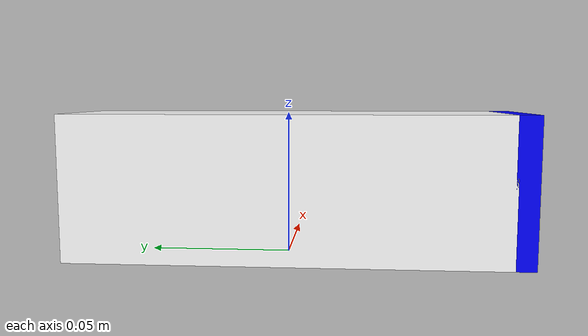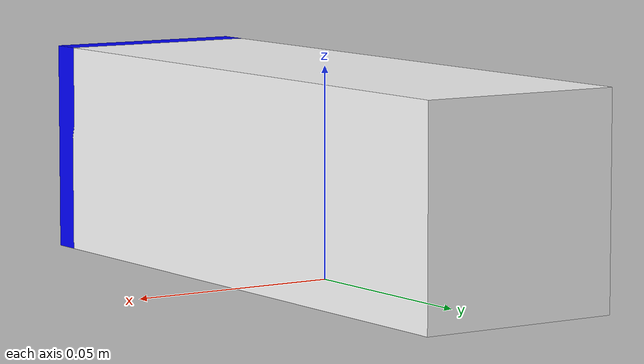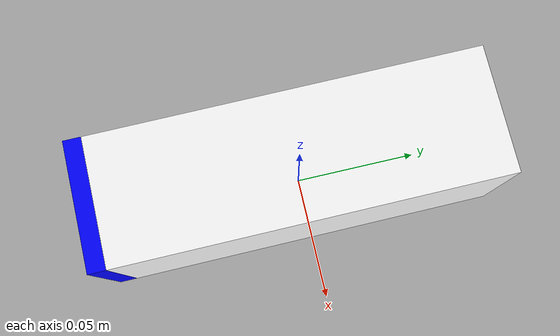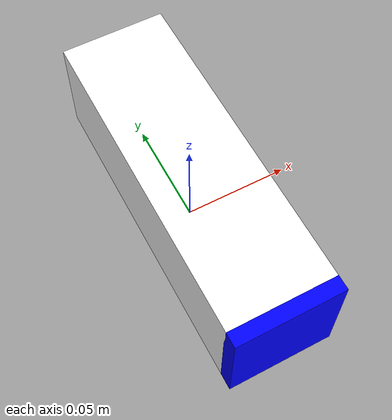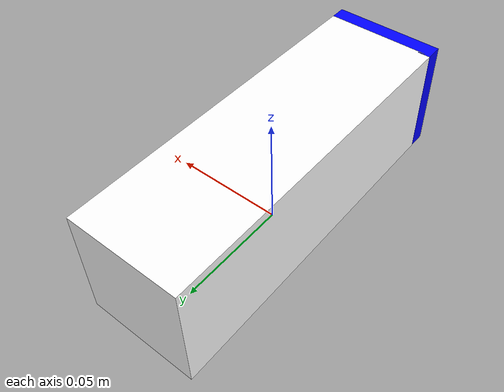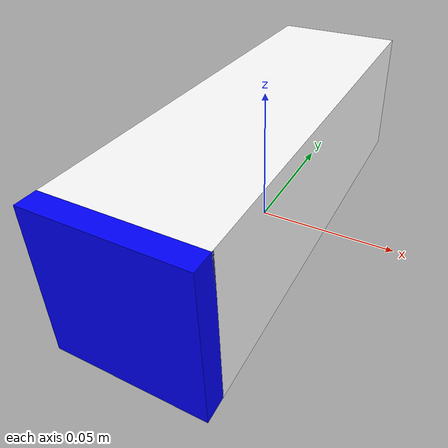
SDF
<?xml version="1.0"?>
<sdf version="1.7">
  <model name="peg">
    <pose>0 0 0.025 0 0 0</pose>
    <link name="peg_y_link">
    </link>
    <link name="peg_base_link">
      <inertial>
        <mass>0.01</mass>
        <inertia>
          <ixx>0.0003542</ixx> <ixy>0.0</ixy> <ixz>0.0</ixz>
          <iyy>0.0003542</iyy> <iyz>0.0</iyz>
          <izz>0.0003542</izz>
        </inertia>
      </inertial>
      <collision name="collision">
        <geometry>
          <box>
            <size>0.049 0.15 0.05</size>
          </box>
        </geometry>
        <surface>
          <friction>
            <ode>
              <mu>0.1</mu>
              <mu2>0.1</mu2>
            </ode>
          </friction>
        </surface>
      </collision>
      <visual name="visual">
        <geometry>
          <box>
            <size>0.049 0.15 0.05</size>
          </box>
        </geometry>
        <material>
          <diffuse>1.0 1.0 1.0 1.0</diffuse>
        </material>
      </visual>
    </link>
    <link name="ft_end">
      <pose>0 -0.078 0 0 0 0</pose>
      <inertial>
        <mass>0.001</mass>
        <inertia>
          <ixx>1</ixx> <ixy>0.0</ixy> <ixz>0.0</ixz>
          <iyy>1</iyy> <iyz>0.0</iyz>
          <izz>1</izz>
        </inertia>
      </inertial>
      <visual name="visual">
        <geometry>
          <box>
            <size>0.049 0.0075 0.05</size>
          </box>
        </geometry>
        <material>
          <diffuse>0. 0. 1.0 1.0</diffuse>
        </material>
      </visual>
      <collision name="collision">
        <geometry>
          <box>
            <size>0.049 0.0075 0.05</size>
          </box>
        </geometry>
        <surface>
          <friction>
            <ode>
              <mu>0.1</mu>
              <mu2>0.1</mu2>
            </ode>
          </friction>
        </surface>
      </collision>
    </link>
    <joint name="ft_joint" type="fixed">
      <parent>peg_base_link</parent>
      <child>ft_end</child>
    </joint>
    <joint name='Pose_x' type='prismatic'>
      <parent>world</parent>
      <child>peg_y_link</child>
      <axis>
        <xyz>1.0 0.0 0.0</xyz>
        <limit>
          <effort>10</effort>
          <lower>-0.25</lower>
          <upper>0.25</upper>
        </limit>
      </axis>
    </joint>
    <joint name='Pose_y' type='prismatic'>
      <parent>peg_y_link</parent>
      <child>peg_base_link</child>
      <axis>
        <xyz>0.0 1.0 0.0</xyz>
        <limit>
          <effort>10</effort>
          <lower>-0.25</lower>
          <upper>0.0</upper>
        </limit>
      </axis>
    </joint>

  </model>
</sdf>
